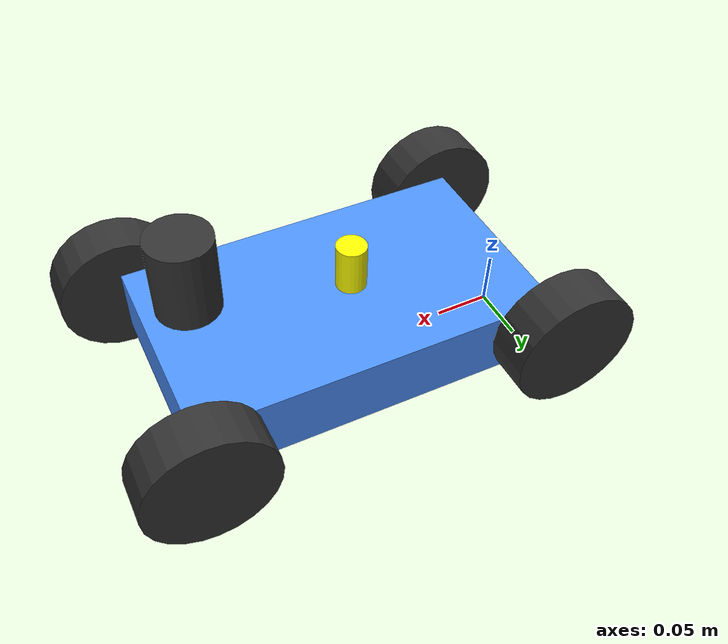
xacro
<?xml version="1.0"?>

<!-- A simple model of the racecar for rviz -->

<robot xmlns:xacro="http://www.ros.org/wiki/xacro" name="racecar">

  <xacro:property name="wheelbase" value="0.319" />
  <xacro:property name="width" value="0.184" />
  <xacro:property name="height" value="0.06" />
  <xacro:property name="ground_offset" value="0.02" />
  <xacro:property name="wheel_radius" value="0.056" />
  <xacro:property name="wheel_length" value="0.040" />
  <xacro:property name="laser_distance_from_base_link" value="0.285" />
  <xacro:property name="laser_height" value="0.07" />
  <xacro:property name="laser_radius" value="0.027" />
  <xacro:property name="imu_distance_from_base_link" value="0.144" />
  <xacro:property name="imu_height" value="0.05" />

  <material name="black">
    <color rgba="0.2 0.2 0.2 1."/>
  </material>

  <material name="blue">
    <color rgba="0.3 0.57 1. 1."/>
  </material>

  <material name="yellow">
    <color rgba="1.0 1.0 0.0 1.0"/>
  </material>

  <link name="base_link">
    <visual>
      <origin xyz="${wheelbase/2} 0 ${ground_offset+height/2}"/>
      <geometry>
        <box size="${wheelbase} ${width} ${height}"/>
      </geometry>
      <material name="blue"/>
    </visual>
  </link>

  <joint name="base_to_imu_link" type="fixed">
    <parent link="base_link"/>
    <child link="imu_link"/>
    <origin xyz="${imu_distance_from_base_link} 0 ${ground_offset+imu_height}" />
  </joint>

  <link name="imu_link">
    <visual>
      <geometry>
        <cylinder radius="${laser_radius/2}" length="${laser_height*1.5}"/>
      </geometry>
      <material name="yellow"/>
    </visual>
  </link>

  <joint name="base_to_laser" type="fixed">
    <parent link="base_link"/>
    <child link="laser"/>
    <origin xyz="${laser_distance_from_base_link} 0 ${ground_offset+height+(laser_height)}"/>
  </joint>

  <link name="laser">
    <visual>
      <geometry>
        <cylinder radius="${laser_radius}" length="${laser_height}"/>
      </geometry>
      <material name="black"/>
    </visual>
  </link>

  <joint name="base_to_back_left_wheel" type="fixed">
    <parent link="base_link"/>
    <child link="back_left_wheel"/>
    <origin xyz="0 ${(wheel_length+width)/2} ${wheel_radius}"/>
  </joint>

  <link name="back_left_wheel">
    <visual>
      <geometry>
        <cylinder radius="${wheel_radius}" length="${wheel_length}"/>
      </geometry>
      <material name="black"/>
      <origin rpy="${pi/2} 0 0"/>
    </visual>
  </link>

  <joint name="base_to_back_right_wheel" type="fixed">
    <parent link="base_link"/>
    <child link="back_right_wheel"/>
    <origin xyz="0 ${-(wheel_length+width)/2} ${wheel_radius}"/>
  </joint>

  <link name="back_right_wheel">
    <visual>
      <geometry>
        <cylinder radius="${wheel_radius}" length="${wheel_length}"/>
      </geometry>
      <material name="black"/>
      <origin rpy="${pi/2} 0 0"/>
    </visual>
  </link>

  <joint name="base_to_front_left_hinge" type="fixed">
    <parent link="base_link"/>
    <child link="front_left_hinge"/>
    <origin xyz="${wheelbase} ${(wheel_length+width)/2} ${wheel_radius}"/>
  </joint>

  <link name="front_left_hinge"/>

  <joint name="front_left_hinge_to_wheel" type="continuous">
    <parent link="front_left_hinge"/>
    <child link="front_left_wheel"/>
  </joint>

  <link name="front_left_wheel">
    <visual>
      <geometry>
        <cylinder radius="${wheel_radius}" length="${wheel_length}"/>
      </geometry>
      <material name="black"/>
      <origin rpy="${pi/2} 0 0"/>
    </visual>
  </link>

  <joint name="base_to_front_right_hinge" type="fixed">
    <parent link="base_link"/>
    <child link="front_right_hinge"/>
    <origin xyz="${wheelbase} ${-(wheel_length+width)/2} ${wheel_radius}"/>
  </joint>

  <link name="front_right_hinge"/>

  <joint name="front_right_hinge_to_wheel" type="continuous">
    <parent link="front_right_hinge"/>
    <child link="front_right_wheel"/>
  </joint>

  <link name="front_right_wheel">
    <visual>
      <geometry>
        <cylinder radius="${wheel_radius}" length="${wheel_length}"/>
      </geometry>
      <material name="black"/>
      <origin rpy="${pi/2} 0 0"/>
    </visual>
  </link>

</robot>
